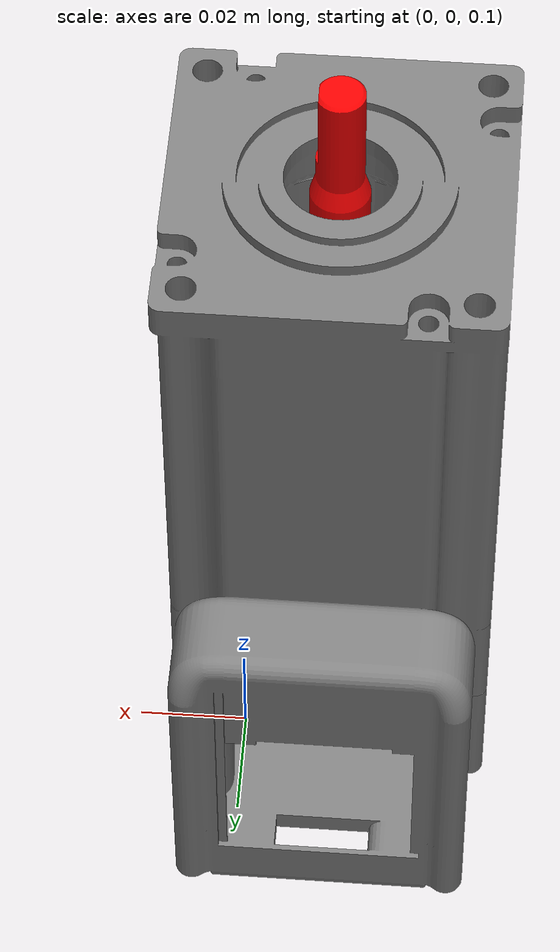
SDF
<?xml version='1.0' encoding='utf-8'?>
<sdf version="1.9">
  <model name="Servomotor">

    <static>false</static>
    <pose>0 0 0.1  1.5707963 0 0</pose>

    <link name="Body">
      <pose>0.0 0.0 0.0 0.0 0.0 0.0</pose>
      <inertial>
        <mass>1.46388158506161</mass>
        <pose>-0.016912914020850718 0.07683939859768606 2.912172999788752e-05 0.0 0.0 0.0</pose>
        <inertia>
          <ixx>0.0033749567677947463</ixx>
          <iyy>0.0010542073086400126</iyy>
          <izz>0.0032601705672210338</izz>
          <ixy>2.3146486097095666e-07</ixy>
          <iyz>-0.00013469573663171098</iyz>
          <ixz>1.747130457827479e-07</ixz>
        </inertia>
      </inertial>
      <visual name="Body_visual">
        <material>
          <ambient>0.5 0.5 0.5 1</ambient>
          <diffuse>0.5 0.5 0.5 1</diffuse>
        </material>
        <geometry>
          <mesh>
            <uri>model://Servomotor/meshes/Body.stl</uri>
            <scale>0.001 0.001 0.001</scale>
          </mesh>
        </geometry>
      </visual>
      <collision name="Body_collision">
        <geometry>
          <mesh>
            <uri>model://Servomotor/meshes/Body.stl</uri>
            <scale>0.001 0.001 0.001</scale>
          </mesh>
        </geometry>
      </collision>
    </link>

    <link name="shaft_link">
      <pose>-0.016923236526741298 0.1840331226203942 0.02927650166617312
            -6.071532165918836e-17 -7.280422969894831e-16 -1.5707963267949</pose>
      <inertial>
        <mass>0.047723773799398524</mass>
        <pose>0.06196276755784602 -1.170198867226439e-05 -0.026280836211985084 0.0 0.0 0.0</pose>
        <inertia>
          <ixx>4.7458953189731283e-07</ixx>
          <iyy>3.611164100762879e-05</iyy>
          <izz>3.6109679889136394e-05</izz>
          <ixy>-2.362885587022015e-08</ixy>
          <iyz>5.144575578305003e-19</iyz>
          <ixz>-2.0146363689801466e-16</ixz>
        </inertia>
      </inertial>
      <visual name="shaft_visual">
        <material>
          <ambient>1 0 0 1</ambient>
          <diffuse>1 0 0 1</diffuse>
        </material>
        <geometry>
          <mesh>
            <uri>model://Servomotor/meshes/shaft_joint.stl</uri>
            <scale>0.001 0.001 0.001</scale>
          </mesh>
        </geometry>
      </visual>
      <collision name="shaft_collision">
        <geometry>
          <mesh>
            <uri>model://Servomotor/meshes/shaft_joint.stl</uri>
            <scale>0.001 0.001 0.001</scale>
          </mesh>
        </geometry>
      </collision>
    </link>

    <joint name="shaft_joint" type="revolute">
      <pose>0.04450012262039125 2.3652674118995444e-07 -0.026280501666173173 0.0 0.0 0.0</pose>
      <parent>Body</parent>
      <child>shaft_link</child>
      <axis>
        <xyz expressed_in="__model__">0.0 1.0 0.0</xyz>
        <limit>
          <lower>-1e16</lower>
          <upper>1e16</upper>
          <effort>5.0</effort>
          <velocity>10.0</velocity>
        </limit>
        <dynamics>
          <damping>0.01</damping>
          <friction>0.001</friction>
        </dynamics>
      </axis>
    </joint>

    <plugin filename="gz-sim-joint-controller-system"
            name="gz::sim::systems::JointController">
      <joint_name>shaft_joint</joint_name>
      <use_force_commands>false</use_force_commands>
      <p_gain>10.0</p_gain>
    </plugin>

  </model>
</sdf>
